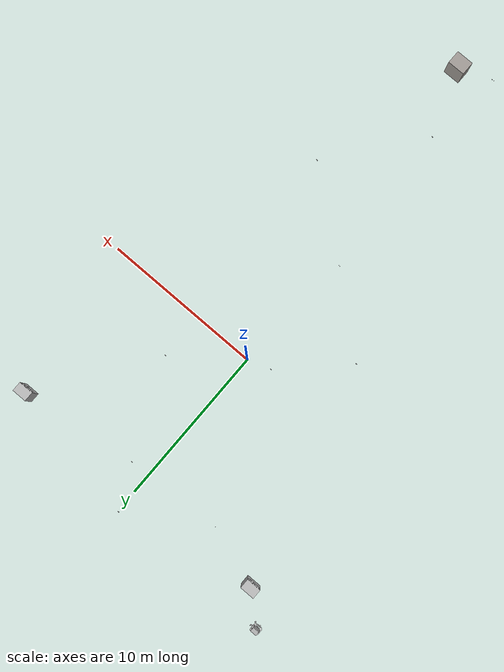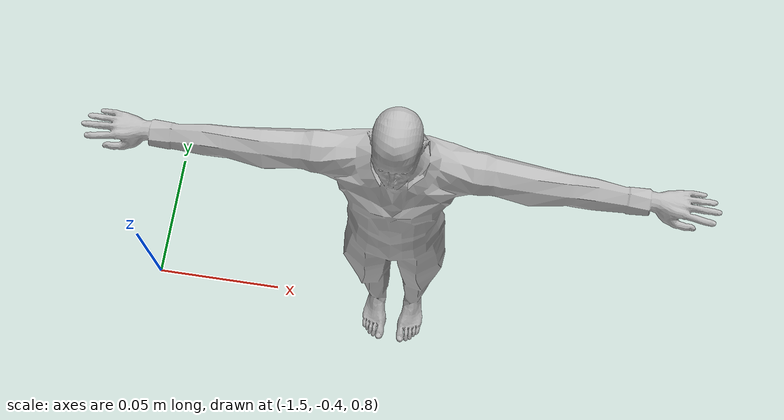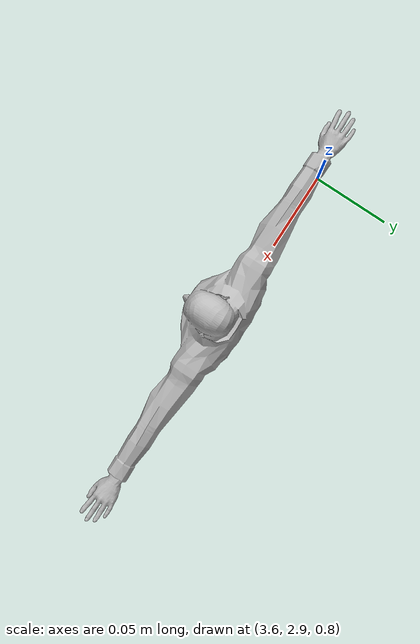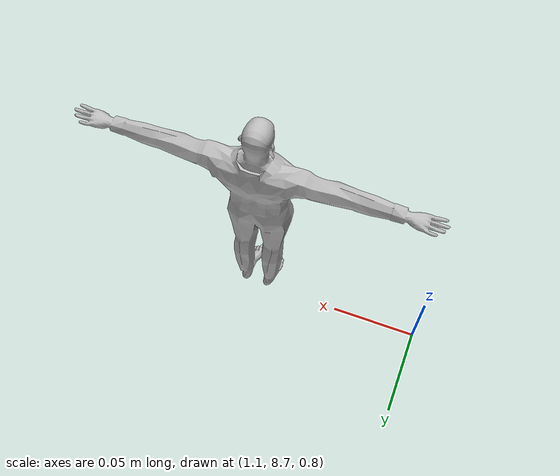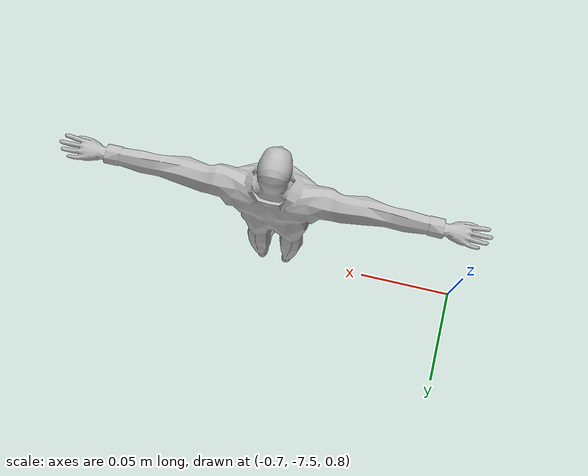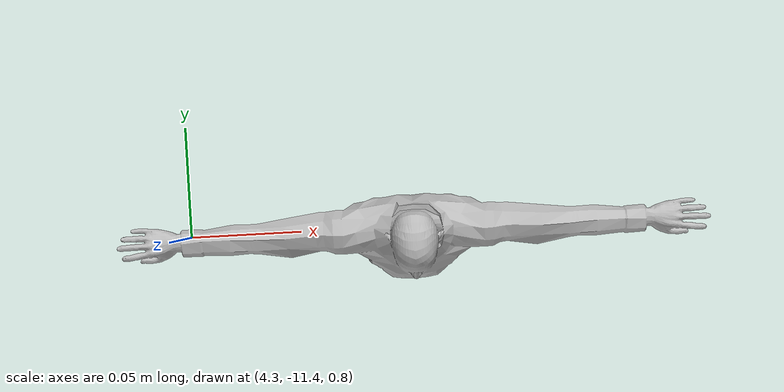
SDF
<sdf version="1.6">
 <world name="hospital_sector_south">
  <gravity>0 0 -9.8</gravity>
  <physics default="0" name="default_physics" type="ode">
   <max_step_size>0.01</max_step_size>
   <real_time_factor>1</real_time_factor>
   <real_time_update_rate>100</real_time_update_rate>
  </physics>
  <scene><ambient>0.6 0.6 0.6 1</ambient><background>0.4 0.4 0.4 1</background><shadows>false</shadows></scene>
  <include><uri>model://sun</uri></include>
  <model name="XRayMachine_1">
   <include><uri>model://XRayMachine</uri><static>true</static><pose>1.79424 -21.3329 0 0 -0 0</pose></include>
  </model>
  <model name="BPCart_1">
   <include>
    <uri>model://BPCart</uri>
    <static>true</static>
    <pose>-10.1788 11.173 0.003446 1e-06 -0 0.003096</pose>
   </include>
  </model>
  <model name="VendingMachine_1">
   <include>
    <uri>model://VendingMachine</uri>
    <static>true</static>
    <pose>-8.45694 9.63064 0 0 -0 0</pose>
   </include>
  </model>
  <model name="VendingMachine_2">
   <include>
    <uri>model://VendingMachine</uri>
    <static>true</static>
    <pose>8.35378 9.64852 -3e-06 -6e-06 0 0</pose>
   </include>
  </model>
  <model name="patient_south_1">
   <pose>-0.1 11.3 0 0 0 0</pose>
   <static>false</static>
   <link name="link">
    <inertial>
     <mass>5.0</mass>
     <inertia><ixx>0.1</ixx><ixy>0</ixy><ixz>0</ixz><iyy>0.1</iyy><iyz>0</iyz><izz>0.1</izz></inertia>
    </inertial>
    <collision name="collision">
     <geometry><box><size>0.5 0.5 1.8</size></box></geometry>
     <pose>0 0 0.9 0 0 0</pose>
    </collision>
    <visual name="visual">
     <pose>0 0 0.9 0 0 0</pose>
     <geometry>
      <mesh><uri>/usr/share/gazebo-11/media/models/stand.dae</uri><scale>1.0 1.0 1.0</scale></mesh>
     </geometry>
    </visual>
   </link>
   <plugin name="patient_south_1_planar_move" filename="libgazebo_ros_planar_move.so">
    <ros><namespace>patient_south_1</namespace></ros>
    <update_rate>50</update_rate>
    <publish_odom>false</publish_odom>
    <publish_odom_tf>false</publish_odom_tf>
   </plugin>
  </model>
  <model name="patient_south_2">
   <pose>1.2 8.7 0 0 0 0</pose>
   <static>false</static>
   <link name="link">
    <inertial>
     <mass>5.0</mass>
     <inertia><ixx>0.1</ixx><ixy>0</ixy><ixz>0</ixz><iyy>0.1</iyy><iyz>0</iyz><izz>0.1</izz></inertia>
    </inertial>
    <collision name="collision">
     <geometry><box><size>0.5 0.5 1.8</size></box></geometry>
     <pose>0 0 0.9 0 0 0</pose>
    </collision>
    <visual name="visual">
     <pose>0 0 0.9 0 0 0</pose>
     <geometry>
      <mesh><uri>/usr/share/gazebo-11/media/models/stand.dae</uri><scale>1.0 1.0 1.0</scale></mesh>
     </geometry>
    </visual>
   </link>
   <plugin name="patient_south_2_planar_move" filename="libgazebo_ros_planar_move.so">
    <ros><namespace>patient_south_2</namespace></ros>
    <update_rate>50</update_rate>
    <publish_odom>false</publish_odom>
    <publish_odom_tf>false</publish_odom_tf>
   </plugin>
  </model>
  <model name="patient_south_3">
   <pose>-4.8 8.4 0 0 0 0</pose>
   <static>false</static>
   <link name="link">
    <inertial>
     <mass>5.0</mass>
     <inertia><ixx>0.1</ixx><ixy>0</ixy><ixz>0</ixz><iyy>0.1</iyy><iyz>0</iyz><izz>0.1</izz></inertia>
    </inertial>
    <collision name="collision">
     <geometry><box><size>0.5 0.5 1.8</size></box></geometry>
     <pose>0 0 0.9 0 0 0</pose>
    </collision>
    <visual name="visual">
     <pose>0 0 0.9 0 0 0</pose>
     <geometry>
      <mesh><uri>/usr/share/gazebo-11/media/models/stand.dae</uri><scale>1.0 1.0 1.0</scale></mesh>
     </geometry>
    </visual>
   </link>
   <plugin name="patient_south_3_planar_move" filename="libgazebo_ros_planar_move.so">
    <ros><namespace>patient_south_3</namespace></ros>
    <update_rate>50</update_rate>
    <publish_odom>false</publish_odom>
    <publish_odom_tf>false</publish_odom_tf>
   </plugin>
  </model>
  <model name="patient_south_4">
   <pose>3.7 2.9 0 0 0 0</pose>
   <static>false</static>
   <link name="link">
    <inertial>
     <mass>5.0</mass>
     <inertia><ixx>0.1</ixx><ixy>0</ixy><ixz>0</ixz><iyy>0.1</iyy><iyz>0</iyz><izz>0.1</izz></inertia>
    </inertial>
    <collision name="collision">
     <geometry><box><size>0.5 0.5 1.8</size></box></geometry>
     <pose>0 0 0.9 0 0 0</pose>
    </collision>
    <visual name="visual">
     <pose>0 0 0.9 0 0 0</pose>
     <geometry>
      <mesh><uri>/usr/share/gazebo-11/media/models/stand.dae</uri><scale>1.0 1.0 1.0</scale></mesh>
     </geometry>
    </visual>
   </link>
   <plugin name="patient_south_4_planar_move" filename="libgazebo_ros_planar_move.so">
    <ros><namespace>patient_south_4</namespace></ros>
    <update_rate>50</update_rate>
    <publish_odom>false</publish_odom>
    <publish_odom_tf>false</publish_odom_tf>
   </plugin>
  </model>
  <model name="patient_south_5">
   <pose>-1.4 -0.4 0 0 0 0</pose>
   <static>false</static>
   <link name="link">
    <inertial>
     <mass>5.0</mass>
     <inertia><ixx>0.1</ixx><ixy>0</ixy><ixz>0</ixz><iyy>0.1</iyy><iyz>0</iyz><izz>0.1</izz></inertia>
    </inertial>
    <collision name="collision">
     <geometry><box><size>0.5 0.5 1.8</size></box></geometry>
     <pose>0 0 0.9 0 0 0</pose>
    </collision>
    <visual name="visual">
     <pose>0 0 0.9 0 0 0</pose>
     <geometry>
      <mesh><uri>/usr/share/gazebo-11/media/models/stand.dae</uri><scale>1.0 1.0 1.0</scale></mesh>
     </geometry>
    </visual>
   </link>
   <plugin name="patient_south_5_planar_move" filename="libgazebo_ros_planar_move.so">
    <ros><namespace>patient_south_5</namespace></ros>
    <update_rate>50</update_rate>
    <publish_odom>false</publish_odom>
    <publish_odom_tf>false</publish_odom_tf>
   </plugin>
  </model>
  <model name="patient_south_6">
   <pose>-4.9 -3.8 0 0 0 0</pose>
   <static>false</static>
   <link name="link">
    <inertial>
     <mass>5.0</mass>
     <inertia><ixx>0.1</ixx><ixy>0</ixy><ixz>0</ixz><iyy>0.1</iyy><iyz>0</iyz><izz>0.1</izz></inertia>
    </inertial>
    <collision name="collision">
     <geometry><box><size>0.5 0.5 1.8</size></box></geometry>
     <pose>0 0 0.9 0 0 0</pose>
    </collision>
    <visual name="visual">
     <pose>0 0 0.9 0 0 0</pose>
     <geometry>
      <mesh><uri>/usr/share/gazebo-11/media/models/stand.dae</uri><scale>1.0 1.0 1.0</scale></mesh>
     </geometry>
    </visual>
   </link>
   <plugin name="patient_south_6_planar_move" filename="libgazebo_ros_planar_move.so">
    <ros><namespace>patient_south_6</namespace></ros>
    <update_rate>50</update_rate>
    <publish_odom>false</publish_odom>
    <publish_odom_tf>false</publish_odom_tf>
   </plugin>
  </model>
  <model name="patient_south_7">
   <pose>-0.6 -7.5 0 0 0 0</pose>
   <static>false</static>
   <link name="link">
    <inertial>
     <mass>5.0</mass>
     <inertia><ixx>0.1</ixx><ixy>0</ixy><ixz>0</ixz><iyy>0.1</iyy><iyz>0</iyz><izz>0.1</izz></inertia>
    </inertial>
    <collision name="collision">
     <geometry><box><size>0.5 0.5 1.8</size></box></geometry>
     <pose>0 0 0.9 0 0 0</pose>
    </collision>
    <visual name="visual">
     <pose>0 0 0.9 0 0 0</pose>
     <geometry>
      <mesh><uri>/usr/share/gazebo-11/media/models/stand.dae</uri><scale>1.0 1.0 1.0</scale></mesh>
     </geometry>
    </visual>
   </link>
   <plugin name="patient_south_7_planar_move" filename="libgazebo_ros_planar_move.so">
    <ros><namespace>patient_south_7</namespace></ros>
    <update_rate>50</update_rate>
    <publish_odom>false</publish_odom>
    <publish_odom_tf>false</publish_odom_tf>
   </plugin>
  </model>
  <model name="patient_south_8">
   <pose>4.4 -11.4 0 0 0 0</pose>
   <static>false</static>
   <link name="link">
    <inertial>
     <mass>5.0</mass>
     <inertia><ixx>0.1</ixx><ixy>0</ixy><ixz>0</ixz><iyy>0.1</iyy><iyz>0</iyz><izz>0.1</izz></inertia>
    </inertial>
    <collision name="collision">
     <geometry><box><size>0.5 0.5 1.8</size></box></geometry>
     <pose>0 0 0.9 0 0 0</pose>
    </collision>
    <visual name="visual">
     <pose>0 0 0.9 0 0 0</pose>
     <geometry>
      <mesh><uri>/usr/share/gazebo-11/media/models/stand.dae</uri><scale>1.0 1.0 1.0</scale></mesh>
     </geometry>
    </visual>
   </link>
   <plugin name="patient_south_8_planar_move" filename="libgazebo_ros_planar_move.so">
    <ros><namespace>patient_south_8</namespace></ros>
    <update_rate>50</update_rate>
    <publish_odom>false</publish_odom>
    <publish_odom_tf>false</publish_odom_tf>
   </plugin>
  </model>
  <model name="patient_south_9">
   <pose>0.2 -16.8 0 0 0 0</pose>
   <static>false</static>
   <link name="link">
    <inertial>
     <mass>5.0</mass>
     <inertia><ixx>0.1</ixx><ixy>0</ixy><ixz>0</ixz><iyy>0.1</iyy><iyz>0</iyz><izz>0.1</izz></inertia>
    </inertial>
    <collision name="collision">
     <geometry><box><size>0.5 0.5 1.8</size></box></geometry>
     <pose>0 0 0.9 0 0 0</pose>
    </collision>
    <visual name="visual">
     <pose>0 0 0.9 0 0 0</pose>
     <geometry>
      <mesh><uri>/usr/share/gazebo-11/media/models/stand.dae</uri><scale>1.0 1.0 1.0</scale></mesh>
     </geometry>
    </visual>
   </link>
   <plugin name="patient_south_9_planar_move" filename="libgazebo_ros_planar_move.so">
    <ros><namespace>patient_south_9</namespace></ros>
    <update_rate>50</update_rate>
    <publish_odom>false</publish_odom>
    <publish_odom_tf>false</publish_odom_tf>
   </plugin>
  </model>
  <model name="patient_south_10">
   <pose>-0.3 -21.7 0 0 0 0</pose>
   <static>false</static>
   <link name="link">
    <inertial>
     <mass>5.0</mass>
     <inertia><ixx>0.1</ixx><ixy>0</ixy><ixz>0</ixz><iyy>0.1</iyy><iyz>0</iyz><izz>0.1</izz></inertia>
    </inertial>
    <collision name="collision">
     <geometry><box><size>0.5 0.5 1.8</size></box></geometry>
     <pose>0 0 0.9 0 0 0</pose>
    </collision>
    <visual name="visual">
     <pose>0 0 0.9 0 0 0</pose>
     <geometry>
      <mesh><uri>/usr/share/gazebo-11/media/models/stand.dae</uri><scale>1.0 1.0 1.0</scale></mesh>
     </geometry>
    </visual>
   </link>
   <plugin name="patient_south_10_planar_move" filename="libgazebo_ros_planar_move.so">
    <ros><namespace>patient_south_10</namespace></ros>
    <update_rate>50</update_rate>
    <publish_odom>false</publish_odom>
    <publish_odom_tf>false</publish_odom_tf>
   </plugin>
  </model>
 </world>
</sdf>

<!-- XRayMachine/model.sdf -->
<sdf version="1.6">
  <model name="XRayMachine">
    <static>true</static>
    <link name="link">
      <collision name="col">
        <geometry>
          <box>
            <size>1.1 0.85 1.65</size>
          </box>
        </geometry>
      </collision>
      <visual name="vis">
        <geometry>
          <box>
            <size>1.1 0.85 1.65</size>
          </box>
        </geometry>
        <material>
          <ambient>0.62 0.6 0.58 1</ambient>
          <diffuse>0.62 0.6 0.58 1</diffuse>
        </material>
      </visual>
    </link>
  </model>
</sdf>

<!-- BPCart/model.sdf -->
<sdf version="1.6">
  <model name='BPCart'>
    <link name="body">
      <pose>0 0 0 0 0 0</pose>

      <visual name="visual">
        <geometry>
          <mesh>
            <uri>model://BPCart/meshes/Cart_BP.obj</uri>
          </mesh>
        </geometry>
      </visual>

      <collision name="collision">
        <geometry>
          <mesh>
            <uri>model://BPCart/meshes/Cart_BP_Col.obj</uri>
          </mesh>
        </geometry>
      </collision>

    </link>
  </model>
</sdf>

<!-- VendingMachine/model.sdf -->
<sdf version="1.6">
  <model name="VendingMachine">
    <link name="body">
      <pose>0 0 0 0 0 0</pose>

      <visual name="visual">
        <geometry>
          <mesh>
            <uri>model://VendingMachine/meshes/vend.obj</uri>
          </mesh>
        </geometry>
      </visual>

      <collision name="collision">
        <geometry>
          <mesh>
            <uri>model://VendingMachine/meshes/vend.obj</uri>
          </mesh>
        </geometry>
      </collision>

    </link>
  </model>
</sdf>
